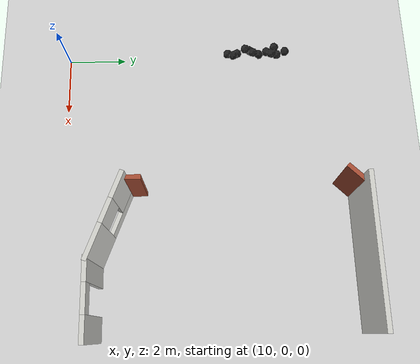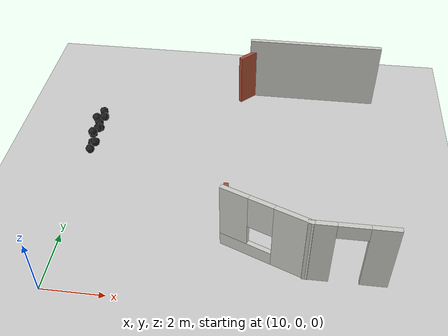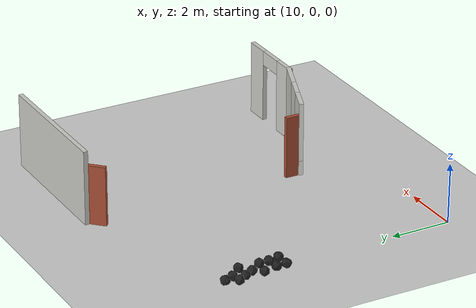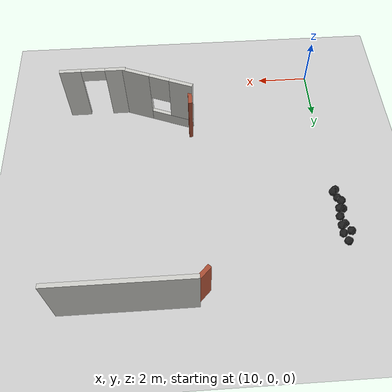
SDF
<sdf version="1.7">
 <world name="default">
  <model name="ground_plane">
   <static>1</static>
   <link name="link">
    <collision name="collision">
     <geometry><plane><normal>0 0 1</normal><size>100 100</size></plane></geometry>
     <surface><friction><ode><mu>100</mu><mu2>50</mu2></ode></friction></surface>
    </collision>
    <visual name="visual">
     <cast_shadows>0</cast_shadows>
     <geometry><plane><normal>0 0 1</normal><size>100 100</size></plane></geometry>
     <material>
      <script><uri>file://media/materials/scripts/gazebo.material</uri><name>Gazebo/Grey</name></script>
     </material>
    </visual>
   </link>
  </model>
  <model name="haoduomiantiaa_35">
   <link name="link_0">
    <inertial>
     <mass>0.2</mass>
     <inertia>
      <ixx>0.166667</ixx>
      <ixy>0</ixy>
      <ixz>0</ixz>
      <iyy>0.166667</iyy>
      <iyz>0</iyz>
      <izz>0.166667</izz>
     </inertia>
    </inertial>
    <visual name="visual">
     <geometry>
      <mesh>
       <uri>/home/lihaoyang/catkin_ws/src/pudong_gazebo/world/stl/haoduomianti.stl</uri>
       <scale>1 1 1</scale>
      </mesh>
     </geometry>
     <material>
      <lighting>1</lighting>
      <script><uri>file://media/materials/scripts/gazebo.material</uri><name>Gazebo/Black</name></script>
      <shader type="pixel"><normal_map>__default__</normal_map></shader>
      <ambient>0.3 0.3 0.3 1</ambient>
      <diffuse>0.7 0.7 0.7 1</diffuse>
      <specular>0.01 0.01 0.01 1</specular>
      <emissive>0 0 0 1</emissive>
     </material>
    </visual>
    <collision name="collision">
     <geometry>
      <mesh>
       <uri>/home/lihaoyang/catkin_ws/src/pudong_gazebo/world/stl/haoduomianti.stl</uri>
       <scale>1 1 1</scale>
      </mesh>
     </geometry>
     <surface>
      <friction>
       <ode><mu>1</mu><mu2>1</mu2><fdir1>0 0 0</fdir1><slip1>0</slip1><slip2>0</slip2></ode>
       <torsional>
        <coefficient>1</coefficient>
        <patch_radius>0</patch_radius>
        <surface_radius>0</surface_radius>
        <use_patch_radius>1</use_patch_radius>
        <ode><slip>0</slip></ode>
       </torsional>
      </friction>
      <bounce><restitution_coefficient>0</restitution_coefficient><threshold>1e+06</threshold></bounce>
      <contact>
       <collide_without_contact>0</collide_without_contact>
       <collide_without_contact_bitmask>1</collide_without_contact_bitmask>
       <collide_bitmask>1</collide_bitmask>
       <ode>
        <soft_cfm>0</soft_cfm>
        <soft_erp>0.2</soft_erp>
        <kp>1e+13</kp>
        <kd>1</kd>
        <max_vel>0.01</max_vel>
        <min_depth>0</min_depth>
       </ode>
       <bullet>
        <split_impulse>1</split_impulse>
        <split_impulse_penetration_threshold>-0.01</split_impulse_penetration_threshold>
        <soft_cfm>0</soft_cfm>
        <soft_erp>0.2</soft_erp>
        <kp>1e+13</kp>
        <kd>1</kd>
       </bullet>
      </contact>
     </surface>
    </collision>
   </link>
   <static>0</static>
   <pose>10.0189 6.8516 -0.058058 0.728772 -1.14965 -0.725149</pose>
  </model>
  <model name="haoduomiantiaa_39">
   <link name="link_0">
    <inertial>
     <mass>0.2</mass>
     <inertia>
      <ixx>0.166667</ixx>
      <ixy>0</ixy>
      <ixz>0</ixz>
      <iyy>0.166667</iyy>
      <iyz>0</iyz>
      <izz>0.166667</izz>
     </inertia>
    </inertial>
    <visual name="visual">
     <geometry>
      <mesh>
       <uri>/home/lihaoyang/catkin_ws/src/pudong_gazebo/world/stl/haoduomianti.stl</uri>
       <scale>1 1 1</scale>
      </mesh>
     </geometry>
     <material>
      <lighting>1</lighting>
      <script><uri>file://media/materials/scripts/gazebo.material</uri><name>Gazebo/Black</name></script>
      <shader type="pixel"><normal_map>__default__</normal_map></shader>
      <ambient>0.3 0.3 0.3 1</ambient>
      <diffuse>0.7 0.7 0.7 1</diffuse>
      <specular>0.01 0.01 0.01 1</specular>
      <emissive>0 0 0 1</emissive>
     </material>
    </visual>
    <collision name="collision">
     <geometry>
      <mesh>
       <uri>/home/lihaoyang/catkin_ws/src/pudong_gazebo/world/stl/haoduomianti.stl</uri>
       <scale>1 1 1</scale>
      </mesh>
     </geometry>
     <surface>
      <friction>
       <ode><mu>1</mu><mu2>1</mu2><fdir1>0 0 0</fdir1><slip1>0</slip1><slip2>0</slip2></ode>
       <torsional>
        <coefficient>1</coefficient>
        <patch_radius>0</patch_radius>
        <surface_radius>0</surface_radius>
        <use_patch_radius>1</use_patch_radius>
        <ode><slip>0</slip></ode>
       </torsional>
      </friction>
      <bounce><restitution_coefficient>0</restitution_coefficient><threshold>1e+06</threshold></bounce>
      <contact>
       <collide_without_contact>0</collide_without_contact>
       <collide_without_contact_bitmask>1</collide_without_contact_bitmask>
       <collide_bitmask>1</collide_bitmask>
       <ode>
        <soft_cfm>0</soft_cfm>
        <soft_erp>0.2</soft_erp>
        <kp>1e+13</kp>
        <kd>1</kd>
        <max_vel>0.01</max_vel>
        <min_depth>0</min_depth>
       </ode>
       <bullet>
        <split_impulse>1</split_impulse>
        <split_impulse_penetration_threshold>-0.01</split_impulse_penetration_threshold>
        <soft_cfm>0</soft_cfm>
        <soft_erp>0.2</soft_erp>
        <kp>1e+13</kp>
        <kd>1</kd>
       </bullet>
      </contact>
     </surface>
    </collision>
   </link>
   <static>0</static>
   <pose>9.86429 6.149 -0.115461 0.785642 -0.615594 0.414032</pose>
  </model>
  <model name="haoduomiantiaa_41">
   <link name="link_0">
    <inertial>
     <mass>0.2</mass>
     <inertia>
      <ixx>0.166667</ixx>
      <ixy>0</ixy>
      <ixz>0</ixz>
      <iyy>0.166667</iyy>
      <iyz>0</iyz>
      <izz>0.166667</izz>
     </inertia>
    </inertial>
    <visual name="visual">
     <geometry>
      <mesh>
       <uri>/home/lihaoyang/catkin_ws/src/pudong_gazebo/world/stl/haoduomianti.stl</uri>
       <scale>1 1 1</scale>
      </mesh>
     </geometry>
     <material>
      <lighting>1</lighting>
      <script><uri>file://media/materials/scripts/gazebo.material</uri><name>Gazebo/Black</name></script>
      <shader type="pixel"><normal_map>__default__</normal_map></shader>
      <ambient>0.3 0.3 0.3 1</ambient>
      <diffuse>0.7 0.7 0.7 1</diffuse>
      <specular>0.01 0.01 0.01 1</specular>
      <emissive>0 0 0 1</emissive>
     </material>
    </visual>
    <collision name="collision">
     <geometry>
      <mesh>
       <uri>/home/lihaoyang/catkin_ws/src/pudong_gazebo/world/stl/haoduomianti.stl</uri>
       <scale>1 1 1</scale>
      </mesh>
     </geometry>
     <surface>
      <friction>
       <ode><mu>1</mu><mu2>1</mu2><fdir1>0 0 0</fdir1><slip1>0</slip1><slip2>0</slip2></ode>
       <torsional>
        <coefficient>1</coefficient>
        <patch_radius>0</patch_radius>
        <surface_radius>0</surface_radius>
        <use_patch_radius>1</use_patch_radius>
        <ode><slip>0</slip></ode>
       </torsional>
      </friction>
      <bounce><restitution_coefficient>0</restitution_coefficient><threshold>1e+06</threshold></bounce>
      <contact>
       <collide_without_contact>0</collide_without_contact>
       <collide_without_contact_bitmask>1</collide_without_contact_bitmask>
       <collide_bitmask>1</collide_bitmask>
       <ode>
        <soft_cfm>0</soft_cfm>
        <soft_erp>0.2</soft_erp>
        <kp>1e+13</kp>
        <kd>1</kd>
        <max_vel>0.01</max_vel>
        <min_depth>0</min_depth>
       </ode>
       <bullet>
        <split_impulse>1</split_impulse>
        <split_impulse_penetration_threshold>-0.01</split_impulse_penetration_threshold>
        <soft_cfm>0</soft_cfm>
        <soft_erp>0.2</soft_erp>
        <kp>1e+13</kp>
        <kd>1</kd>
       </bullet>
      </contact>
     </surface>
    </collision>
   </link>
   <static>0</static>
   <pose>9.93964 7.59733 -0.11331 0.785382 -0.565827 1.96166</pose>
  </model>
  <model name="haoduomiantiaa_45">
   <link name="link_0">
    <inertial>
     <mass>0.2</mass>
     <inertia>
      <ixx>0.166667</ixx>
      <ixy>0</ixy>
      <ixz>0</ixz>
      <iyy>0.166667</iyy>
      <iyz>0</iyz>
      <izz>0.166667</izz>
     </inertia>
    </inertial>
    <visual name="visual">
     <geometry>
      <mesh>
       <uri>/home/lihaoyang/catkin_ws/src/pudong_gazebo/world/stl/haoduomianti.stl</uri>
       <scale>1 1 1</scale>
      </mesh>
     </geometry>
     <material>
      <lighting>1</lighting>
      <script><uri>file://media/materials/scripts/gazebo.material</uri><name>Gazebo/Black</name></script>
      <shader type="pixel"><normal_map>__default__</normal_map></shader>
      <ambient>0.3 0.3 0.3 1</ambient>
      <diffuse>0.7 0.7 0.7 1</diffuse>
      <specular>0.01 0.01 0.01 1</specular>
      <emissive>0 0 0 1</emissive>
     </material>
    </visual>
    <collision name="collision">
     <geometry>
      <mesh>
       <uri>/home/lihaoyang/catkin_ws/src/pudong_gazebo/world/stl/haoduomianti.stl</uri>
       <scale>1 1 1</scale>
      </mesh>
     </geometry>
     <surface>
      <friction>
       <ode><mu>1</mu><mu2>1</mu2><fdir1>0 0 0</fdir1><slip1>0</slip1><slip2>0</slip2></ode>
       <torsional>
        <coefficient>1</coefficient>
        <patch_radius>0</patch_radius>
        <surface_radius>0</surface_radius>
        <use_patch_radius>1</use_patch_radius>
        <ode><slip>0</slip></ode>
       </torsional>
      </friction>
      <bounce><restitution_coefficient>0</restitution_coefficient><threshold>1e+06</threshold></bounce>
      <contact>
       <collide_without_contact>0</collide_without_contact>
       <collide_without_contact_bitmask>1</collide_without_contact_bitmask>
       <collide_bitmask>1</collide_bitmask>
       <ode>
        <soft_cfm>0</soft_cfm>
        <soft_erp>0.2</soft_erp>
        <kp>1e+13</kp>
        <kd>1</kd>
        <max_vel>0.01</max_vel>
        <min_depth>0</min_depth>
       </ode>
       <bullet>
        <split_impulse>1</split_impulse>
        <split_impulse_penetration_threshold>-0.01</split_impulse_penetration_threshold>
        <soft_cfm>0</soft_cfm>
        <soft_erp>0.2</soft_erp>
        <kp>1e+13</kp>
        <kd>1</kd>
       </bullet>
      </contact>
     </surface>
    </collision>
   </link>
   <static>0</static>
   <pose>9.88957 5.83277 -0.110086 0.655447 -0.670297 2.05622</pose>
  </model>
  <model name="haoduomiantiaa_49">
   <link name="link_0">
    <inertial>
     <mass>0.2</mass>
     <inertia>
      <ixx>0.166667</ixx>
      <ixy>0</ixy>
      <ixz>0</ixz>
      <iyy>0.166667</iyy>
      <iyz>0</iyz>
      <izz>0.166667</izz>
     </inertia>
    </inertial>
    <visual name="visual">
     <geometry>
      <mesh>
       <uri>/home/lihaoyang/catkin_ws/src/pudong_gazebo/world/stl/haoduomianti.stl</uri>
       <scale>1 1 1</scale>
      </mesh>
     </geometry>
     <material>
      <lighting>1</lighting>
      <script><uri>file://media/materials/scripts/gazebo.material</uri><name>Gazebo/Black</name></script>
      <shader type="pixel"><normal_map>__default__</normal_map></shader>
      <ambient>0.3 0.3 0.3 1</ambient>
      <diffuse>0.7 0.7 0.7 1</diffuse>
      <specular>0.01 0.01 0.01 1</specular>
      <emissive>0 0 0 1</emissive>
     </material>
    </visual>
    <collision name="collision">
     <geometry>
      <mesh>
       <uri>/home/lihaoyang/catkin_ws/src/pudong_gazebo/world/stl/haoduomianti.stl</uri>
       <scale>1 1 1</scale>
      </mesh>
     </geometry>
     <surface>
      <friction>
       <ode><mu>1</mu><mu2>1</mu2><fdir1>0 0 0</fdir1><slip1>0</slip1><slip2>0</slip2></ode>
       <torsional>
        <coefficient>1</coefficient>
        <patch_radius>0</patch_radius>
        <surface_radius>0</surface_radius>
        <use_patch_radius>1</use_patch_radius>
        <ode><slip>0</slip></ode>
       </torsional>
      </friction>
      <bounce><restitution_coefficient>0</restitution_coefficient><threshold>1e+06</threshold></bounce>
      <contact>
       <collide_without_contact>0</collide_without_contact>
       <collide_without_contact_bitmask>1</collide_without_contact_bitmask>
       <collide_bitmask>1</collide_bitmask>
       <ode>
        <soft_cfm>0</soft_cfm>
        <soft_erp>0.2</soft_erp>
        <kp>1e+13</kp>
        <kd>1</kd>
        <max_vel>0.01</max_vel>
        <min_depth>0</min_depth>
       </ode>
       <bullet>
        <split_impulse>1</split_impulse>
        <split_impulse_penetration_threshold>-0.01</split_impulse_penetration_threshold>
        <soft_cfm>0</soft_cfm>
        <soft_erp>0.2</soft_erp>
        <kp>1e+13</kp>
        <kd>1</kd>
       </bullet>
      </contact>
     </surface>
    </collision>
   </link>
   <static>0</static>
   <pose>9.75485 6.62237 -0.116007 0.785505 -0.615481 -0.572969</pose>
  </model>
  <model name="haoduomiantiaa_53">
   <link name="link_0">
    <inertial>
     <mass>0.2</mass>
     <inertia>
      <ixx>0.166667</ixx>
      <ixy>0</ixy>
      <ixz>0</ixz>
      <iyy>0.166667</iyy>
      <iyz>0</iyz>
      <izz>0.166667</izz>
     </inertia>
    </inertial>
    <visual name="visual">
     <geometry>
      <mesh>
       <uri>/home/lihaoyang/catkin_ws/src/pudong_gazebo/world/stl/haoduomianti.stl</uri>
       <scale>1 1 1</scale>
      </mesh>
     </geometry>
     <material>
      <lighting>1</lighting>
      <script><uri>file://media/materials/scripts/gazebo.material</uri><name>Gazebo/Black</name></script>
      <shader type="pixel"><normal_map>__default__</normal_map></shader>
      <ambient>0.3 0.3 0.3 1</ambient>
      <diffuse>0.7 0.7 0.7 1</diffuse>
      <specular>0.01 0.01 0.01 1</specular>
      <emissive>0 0 0 1</emissive>
     </material>
    </visual>
    <collision name="collision">
     <geometry>
      <mesh>
       <uri>/home/lihaoyang/catkin_ws/src/pudong_gazebo/world/stl/haoduomianti.stl</uri>
       <scale>1 1 1</scale>
      </mesh>
     </geometry>
     <surface>
      <friction>
       <ode><mu>1</mu><mu2>1</mu2><fdir1>0 0 0</fdir1><slip1>0</slip1><slip2>0</slip2></ode>
       <torsional>
        <coefficient>1</coefficient>
        <patch_radius>0</patch_radius>
        <surface_radius>0</surface_radius>
        <use_patch_radius>1</use_patch_radius>
        <ode><slip>0</slip></ode>
       </torsional>
      </friction>
      <bounce><restitution_coefficient>0</restitution_coefficient><threshold>1e+06</threshold></bounce>
      <contact>
       <collide_without_contact>0</collide_without_contact>
       <collide_without_contact_bitmask>1</collide_without_contact_bitmask>
       <collide_bitmask>1</collide_bitmask>
       <ode>
        <soft_cfm>0</soft_cfm>
        <soft_erp>0.2</soft_erp>
        <kp>1e+13</kp>
        <kd>1</kd>
        <max_vel>0.01</max_vel>
        <min_depth>0</min_depth>
       </ode>
       <bullet>
        <split_impulse>1</split_impulse>
        <split_impulse_penetration_threshold>-0.01</split_impulse_penetration_threshold>
        <soft_cfm>0</soft_cfm>
        <soft_erp>0.2</soft_erp>
        <kp>1e+13</kp>
        <kd>1</kd>
       </bullet>
      </contact>
     </surface>
    </collision>
   </link>
   <static>0</static>
   <pose>9.85192 7.22022 -0.107887 0.613081 -0.68561 0.763062</pose>
  </model>
  <model name="haoduomiantiaa_57">
   <link name="link_0">
    <inertial>
     <mass>0.2</mass>
     <inertia>
      <ixx>0.166667</ixx>
      <ixy>0</ixy>
      <ixz>0</ixz>
      <iyy>0.166667</iyy>
      <iyz>0</iyz>
      <izz>0.166667</izz>
     </inertia>
    </inertial>
    <visual name="visual">
     <geometry>
      <mesh>
       <uri>/home/lihaoyang/catkin_ws/src/pudong_gazebo/world/stl/haoduomianti.stl</uri>
       <scale>1 1 1</scale>
      </mesh>
     </geometry>
     <material>
      <lighting>1</lighting>
      <script><uri>file://media/materials/scripts/gazebo.material</uri><name>Gazebo/Black</name></script>
      <shader type="pixel"><normal_map>__default__</normal_map></shader>
      <ambient>0.3 0.3 0.3 1</ambient>
      <diffuse>0.7 0.7 0.7 1</diffuse>
      <specular>0.01 0.01 0.01 1</specular>
      <emissive>0 0 0 1</emissive>
     </material>
    </visual>
    <collision name="collision">
     <geometry>
      <mesh>
       <uri>/home/lihaoyang/catkin_ws/src/pudong_gazebo/world/stl/haoduomianti.stl</uri>
       <scale>1 1 1</scale>
      </mesh>
     </geometry>
     <surface>
      <friction>
       <ode><mu>1</mu><mu2>1</mu2><fdir1>0 0 0</fdir1><slip1>0</slip1><slip2>0</slip2></ode>
       <torsional>
        <coefficient>1</coefficient>
        <patch_radius>0</patch_radius>
        <surface_radius>0</surface_radius>
        <use_patch_radius>1</use_patch_radius>
        <ode><slip>0</slip></ode>
       </torsional>
      </friction>
      <bounce><restitution_coefficient>0</restitution_coefficient><threshold>1e+06</threshold></bounce>
      <contact>
       <collide_without_contact>0</collide_without_contact>
       <collide_without_contact_bitmask>1</collide_without_contact_bitmask>
       <collide_bitmask>1</collide_bitmask>
       <ode>
        <soft_cfm>0</soft_cfm>
        <soft_erp>0.2</soft_erp>
        <kp>1e+13</kp>
        <kd>1</kd>
        <max_vel>0.01</max_vel>
        <min_depth>0</min_depth>
       </ode>
       <bullet>
        <split_impulse>1</split_impulse>
        <split_impulse_penetration_threshold>-0.01</split_impulse_penetration_threshold>
        <soft_cfm>0</soft_cfm>
        <soft_erp>0.2</soft_erp>
        <kp>1e+13</kp>
        <kd>1</kd>
       </bullet>
      </contact>
     </surface>
    </collision>
   </link>
   <static>0</static>
   <pose>9.90773 6.4278 0.162195 1.04364 -0.419477 -2.47544</pose>
  </model>
  <model name="haoduomiantiaa_65">
   <link name="link_0">
    <inertial>
     <mass>0.2</mass>
     <inertia>
      <ixx>0.166667</ixx>
      <ixy>0</ixy>
      <ixz>0</ixz>
      <iyy>0.166667</iyy>
      <iyz>0</iyz>
      <izz>0.166667</izz>
     </inertia>
    </inertial>
    <visual name="visual">
     <geometry>
      <mesh>
       <uri>/home/lihaoyang/catkin_ws/src/pudong_gazebo/world/stl/haoduomianti.stl</uri>
       <scale>1 1 1</scale>
      </mesh>
     </geometry>
     <material>
      <lighting>1</lighting>
      <script><uri>file://media/materials/scripts/gazebo.material</uri><name>Gazebo/Black</name></script>
      <shader type="pixel"><normal_map>__default__</normal_map></shader>
      <ambient>0.3 0.3 0.3 1</ambient>
      <diffuse>0.7 0.7 0.7 1</diffuse>
      <specular>0.01 0.01 0.01 1</specular>
      <emissive>0 0 0 1</emissive>
     </material>
    </visual>
    <collision name="collision">
     <geometry>
      <mesh>
       <uri>/home/lihaoyang/catkin_ws/src/pudong_gazebo/world/stl/haoduomianti.stl</uri>
       <scale>1 1 1</scale>
      </mesh>
     </geometry>
     <surface>
      <friction>
       <ode><mu>1</mu><mu2>1</mu2><fdir1>0 0 0</fdir1><slip1>0</slip1><slip2>0</slip2></ode>
       <torsional>
        <coefficient>1</coefficient>
        <patch_radius>0</patch_radius>
        <surface_radius>0</surface_radius>
        <use_patch_radius>1</use_patch_radius>
        <ode><slip>0</slip></ode>
       </torsional>
      </friction>
      <bounce><restitution_coefficient>0</restitution_coefficient><threshold>1e+06</threshold></bounce>
      <contact>
       <collide_without_contact>0</collide_without_contact>
       <collide_without_contact_bitmask>1</collide_without_contact_bitmask>
       <collide_bitmask>1</collide_bitmask>
       <ode>
        <soft_cfm>0</soft_cfm>
        <soft_erp>0.2</soft_erp>
        <kp>1e+13</kp>
        <kd>1</kd>
        <max_vel>0.01</max_vel>
        <min_depth>0</min_depth>
       </ode>
       <bullet>
        <split_impulse>1</split_impulse>
        <split_impulse_penetration_threshold>-0.01</split_impulse_penetration_threshold>
        <soft_cfm>0</soft_cfm>
        <soft_erp>0.2</soft_erp>
        <kp>1e+13</kp>
        <kd>1</kd>
       </bullet>
      </contact>
     </surface>
    </collision>
   </link>
   <static>0</static>
   <pose>9.96659 7.36416 0.080085 0.660725 -0.557515 -0.220161</pose>
  </model>
  <model name="haoduomiantiaa_81">
   <link name="link_0">
    <inertial>
     <mass>0.2</mass>
     <inertia>
      <ixx>0.166667</ixx>
      <ixy>0</ixy>
      <ixz>0</ixz>
      <iyy>0.166667</iyy>
      <iyz>0</iyz>
      <izz>0.166667</izz>
     </inertia>
    </inertial>
    <visual name="visual">
     <geometry>
      <mesh>
       <uri>/home/lihaoyang/catkin_ws/src/pudong_gazebo/world/stl/haoduomianti.stl</uri>
       <scale>1 1 1</scale>
      </mesh>
     </geometry>
     <material>
      <lighting>1</lighting>
      <script><uri>file://media/materials/scripts/gazebo.material</uri><name>Gazebo/Black</name></script>
      <shader type="pixel"><normal_map>__default__</normal_map></shader>
      <ambient>0.3 0.3 0.3 1</ambient>
      <diffuse>0.7 0.7 0.7 1</diffuse>
      <specular>0.01 0.01 0.01 1</specular>
      <emissive>0 0 0 1</emissive>
     </material>
    </visual>
    <collision name="collision">
     <geometry>
      <mesh>
       <uri>/home/lihaoyang/catkin_ws/src/pudong_gazebo/world/stl/haoduomianti.stl</uri>
       <scale>1 1 1</scale>
      </mesh>
     </geometry>
     <surface>
      <friction>
       <ode><mu>1</mu><mu2>1</mu2><fdir1>0 0 0</fdir1><slip1>0</slip1><slip2>0</slip2></ode>
       <torsional>
        <coefficient>1</coefficient>
        <patch_radius>0</patch_radius>
        <surface_radius>0</surface_radius>
        <use_patch_radius>1</use_patch_radius>
        <ode><slip>0</slip></ode>
       </torsional>
      </friction>
      <bounce><restitution_coefficient>0</restitution_coefficient><threshold>1e+06</threshold></bounce>
      <contact>
       <collide_without_contact>0</collide_without_contact>
       <collide_without_contact_bitmask>1</collide_without_contact_bitmask>
       <collide_bitmask>1</collide_bitmask>
       <ode>
        <soft_cfm>0</soft_cfm>
        <soft_erp>0.2</soft_erp>
        <kp>1e+13</kp>
        <kd>1</kd>
        <max_vel>0.01</max_vel>
        <min_depth>0</min_depth>
       </ode>
       <bullet>
        <split_impulse>1</split_impulse>
        <split_impulse_penetration_threshold>-0.01</split_impulse_penetration_threshold>
        <soft_cfm>0</soft_cfm>
        <soft_erp>0.2</soft_erp>
        <kp>1e+13</kp>
        <kd>1</kd>
       </bullet>
      </contact>
     </surface>
    </collision>
   </link>
   <static>0</static>
   <pose>9.90857 6.74034 0.091547 0.865792 -0.475133 -0.401096</pose>
  </model>
  <model name="haoduomiantiaa_102">
   <link name="link_0">
    <inertial>
     <mass>0.2</mass>
     <inertia>
      <ixx>0.166667</ixx>
      <ixy>0</ixy>
      <ixz>0</ixz>
      <iyy>0.166667</iyy>
      <iyz>0</iyz>
      <izz>0.166667</izz>
     </inertia>
    </inertial>
    <visual name="visual">
     <geometry>
      <mesh>
       <uri>/home/lihaoyang/catkin_ws/src/pudong_gazebo/world/stl/haoduomianti.stl</uri>
       <scale>1 1 1</scale>
      </mesh>
     </geometry>
     <material>
      <lighting>1</lighting>
      <script><uri>file://media/materials/scripts/gazebo.material</uri><name>Gazebo/Black</name></script>
      <shader type="pixel"><normal_map>__default__</normal_map></shader>
      <ambient>0.3 0.3 0.3 1</ambient>
      <diffuse>0.7 0.7 0.7 1</diffuse>
      <specular>0.01 0.01 0.01 1</specular>
      <emissive>0 0 0 1</emissive>
     </material>
    </visual>
    <collision name="collision">
     <geometry>
      <mesh>
       <uri>/home/lihaoyang/catkin_ws/src/pudong_gazebo/world/stl/haoduomianti.stl</uri>
       <scale>1 1 1</scale>
      </mesh>
     </geometry>
     <surface>
      <friction>
       <ode><mu>1</mu><mu2>1</mu2><fdir1>0 0 0</fdir1><slip1>0</slip1><slip2>0</slip2></ode>
       <torsional>
        <coefficient>1</coefficient>
        <patch_radius>0</patch_radius>
        <surface_radius>0</surface_radius>
        <use_patch_radius>1</use_patch_radius>
        <ode><slip>0</slip></ode>
       </torsional>
      </friction>
      <bounce><restitution_coefficient>0</restitution_coefficient><threshold>1e+06</threshold></bounce>
      <contact>
       <collide_without_contact>0</collide_without_contact>
       <collide_without_contact_bitmask>1</collide_without_contact_bitmask>
       <collide_bitmask>1</collide_bitmask>
       <ode>
        <soft_cfm>0</soft_cfm>
        <soft_erp>0.2</soft_erp>
        <kp>1e+13</kp>
        <kd>1</kd>
        <max_vel>0.01</max_vel>
        <min_depth>0</min_depth>
       </ode>
       <bullet>
        <split_impulse>1</split_impulse>
        <split_impulse_penetration_threshold>-0.01</split_impulse_penetration_threshold>
        <soft_cfm>0</soft_cfm>
        <soft_erp>0.2</soft_erp>
        <kp>1e+13</kp>
        <kd>1</kd>
       </bullet>
      </contact>
     </surface>
    </collision>
   </link>
   <static>0</static>
   <pose>9.63603 7.53433 -0.115477 0.785445 -0.615497 -0.650804</pose>
  </model>
  <model name="haoduomiantiaa_104">
   <link name="link_0">
    <inertial>
     <mass>0.2</mass>
     <inertia>
      <ixx>0.166667</ixx>
      <ixy>0</ixy>
      <ixz>0</ixz>
      <iyy>0.166667</iyy>
      <iyz>0</iyz>
      <izz>0.166667</izz>
     </inertia>
    </inertial>
    <visual name="visual">
     <geometry>
      <mesh>
       <uri>/home/lihaoyang/catkin_ws/src/pudong_gazebo/world/stl/haoduomianti.stl</uri>
       <scale>1 1 1</scale>
      </mesh>
     </geometry>
     <material>
      <lighting>1</lighting>
      <script><uri>file://media/materials/scripts/gazebo.material</uri><name>Gazebo/Black</name></script>
      <shader type="pixel"><normal_map>__default__</normal_map></shader>
      <ambient>0.3 0.3 0.3 1</ambient>
      <diffuse>0.7 0.7 0.7 1</diffuse>
      <specular>0.01 0.01 0.01 1</specular>
      <emissive>0 0 0 1</emissive>
     </material>
    </visual>
    <collision name="collision">
     <geometry>
      <mesh>
       <uri>/home/lihaoyang/catkin_ws/src/pudong_gazebo/world/stl/haoduomianti.stl</uri>
       <scale>1 1 1</scale>
      </mesh>
     </geometry>
     <surface>
      <friction>
       <ode><mu>1</mu><mu2>1</mu2><fdir1>0 0 0</fdir1><slip1>0</slip1><slip2>0</slip2></ode>
       <torsional>
        <coefficient>1</coefficient>
        <patch_radius>0</patch_radius>
        <surface_radius>0</surface_radius>
        <use_patch_radius>1</use_patch_radius>
        <ode><slip>0</slip></ode>
       </torsional>
      </friction>
      <bounce><restitution_coefficient>0</restitution_coefficient><threshold>1e+06</threshold></bounce>
      <contact>
       <collide_without_contact>0</collide_without_contact>
       <collide_without_contact_bitmask>1</collide_without_contact_bitmask>
       <collide_bitmask>1</collide_bitmask>
       <ode>
        <soft_cfm>0</soft_cfm>
        <soft_erp>0.2</soft_erp>
        <kp>1e+13</kp>
        <kd>1</kd>
        <max_vel>0.01</max_vel>
        <min_depth>0</min_depth>
       </ode>
       <bullet>
        <split_impulse>1</split_impulse>
        <split_impulse_penetration_threshold>-0.01</split_impulse_penetration_threshold>
        <soft_cfm>0</soft_cfm>
        <soft_erp>0.2</soft_erp>
        <kp>1e+13</kp>
        <kd>1</kd>
       </bullet>
      </contact>
     </surface>
    </collision>
   </link>
   <static>0</static>
   <pose>10.0135 5.97823 0.073026 0.909858 -0.611179 2.29292</pose>
  </model>
  <model name="haoduomiantiaa_120">
   <link name="link_0">
    <inertial>
     <mass>0.2</mass>
     <inertia>
      <ixx>0.166667</ixx>
      <ixy>0</ixy>
      <ixz>0</ixz>
      <iyy>0.166667</iyy>
      <iyz>0</iyz>
      <izz>0.166667</izz>
     </inertia>
    </inertial>
    <visual name="visual">
     <geometry>
      <mesh>
       <uri>/home/lihaoyang/catkin_ws/src/pudong_gazebo/world/stl/haoduomianti.stl</uri>
       <scale>1 1 1</scale>
      </mesh>
     </geometry>
     <material>
      <lighting>1</lighting>
      <script><uri>file://media/materials/scripts/gazebo.material</uri><name>Gazebo/Black</name></script>
      <shader type="pixel"><normal_map>__default__</normal_map></shader>
      <ambient>0.3 0.3 0.3 1</ambient>
      <diffuse>0.7 0.7 0.7 1</diffuse>
      <specular>0.01 0.01 0.01 1</specular>
      <emissive>0 0 0 1</emissive>
     </material>
    </visual>
    <collision name="collision">
     <geometry>
      <mesh>
       <uri>/home/lihaoyang/catkin_ws/src/pudong_gazebo/world/stl/haoduomianti.stl</uri>
       <scale>1 1 1</scale>
      </mesh>
     </geometry>
     <surface>
      <friction>
       <ode><mu>1</mu><mu2>1</mu2><fdir1>0 0 0</fdir1><slip1>0</slip1><slip2>0</slip2></ode>
       <torsional>
        <coefficient>1</coefficient>
        <patch_radius>0</patch_radius>
        <surface_radius>0</surface_radius>
        <use_patch_radius>1</use_patch_radius>
        <ode><slip>0</slip></ode>
       </torsional>
      </friction>
      <bounce><restitution_coefficient>0</restitution_coefficient><threshold>1e+06</threshold></bounce>
      <contact>
       <collide_without_contact>0</collide_without_contact>
       <collide_without_contact_bitmask>1</collide_without_contact_bitmask>
       <collide_bitmask>1</collide_bitmask>
       <ode>
        <soft_cfm>0</soft_cfm>
        <soft_erp>0.2</soft_erp>
        <kp>1e+13</kp>
        <kd>1</kd>
        <max_vel>0.01</max_vel>
        <min_depth>0</min_depth>
       </ode>
       <bullet>
        <split_impulse>1</split_impulse>
        <split_impulse_penetration_threshold>-0.01</split_impulse_penetration_threshold>
        <soft_cfm>0</soft_cfm>
        <soft_erp>0.2</soft_erp>
        <kp>1e+13</kp>
        <kd>1</kd>
       </bullet>
      </contact>
     </surface>
    </collision>
   </link>
   <static>0</static>
   <pose>9.81563 7.91841 -0.115498 0.785239 -0.615554 0.945229</pose>
  </model>
  <model name="house">
   <link name="Wall_10">
    <pose>6.351 -3.13846 0 0 -0 2.76762</pose>
    <visual name="Wall_10_Visual_2">
     <pose>0.98795 0 1.5 0 -0 0</pose>
     <geometry><box><size>0.905886 0.15 2</size></box></geometry>
     <material>
      <script><uri>file://media/materials/scripts/gazebo.material</uri><name>Gazebo/CeilingTiled</name></script>
      <ambient>1 1 1 1</ambient>
      <shader type="pixel"/>
     </material>
     <meta><layer>0</layer></meta>
    </visual>
    <visual name="Wall_10_Visual_3">
     <pose>0.135006 0 1.9 0 -0 0</pose>
     <geometry><box><size>0.8 0.15 1.2</size></box></geometry>
     <material>
      <script><uri>file://media/materials/scripts/gazebo.material</uri><name>Gazebo/CeilingTiled</name></script>
      <ambient>1 1 1 1</ambient>
      <shader type="pixel"/>
     </material>
     <meta><layer>0</layer></meta>
    </visual>
    <visual name="Wall_10_Visual_1">
     <pose>0.58795 0 0.25 0 -0 0</pose>
     <geometry><box><size>1.70589 0.15 0.5</size></box></geometry>
     <material>
      <script><uri>file://media/materials/scripts/gazebo.material</uri><name>Gazebo/CeilingTiled</name></script>
      <ambient>1 1 1 1</ambient>
      <shader type="pixel"/>
     </material>
     <meta><layer>0</layer></meta>
    </visual>
    <visual name="Wall_10_Visual_0">
     <pose>-0.852943 0 1.25 0 -0 0</pose>
     <geometry><box><size>1.1759 0.15 2.5</size></box></geometry>
     <material>
      <script><uri>file://media/materials/scripts/gazebo.material</uri><name>Gazebo/CeilingTiled</name></script>
      <ambient>1 1 1 1</ambient>
      <shader type="pixel"/>
     </material>
     <meta><layer>0</layer></meta>
    </visual>
    <collision name="Wall_10_Collision_0">
     <pose>-0.852943 0 1.25 0 -0 0</pose>
     <geometry><box><size>1.1759 0.15 2.5</size></box></geometry>
     <surface>
      <friction>
       <ode><mu>1</mu><mu2>1</mu2><fdir1>0 0 0</fdir1><slip1>0</slip1><slip2>0</slip2></ode>
       <torsional>
        <coefficient>1</coefficient>
        <patch_radius>0</patch_radius>
        <surface_radius>0</surface_radius>
        <use_patch_radius>1</use_patch_radius>
        <ode><slip>0</slip></ode>
       </torsional>
      </friction>
      <bounce><restitution_coefficient>0</restitution_coefficient><threshold>1e+06</threshold></bounce>
      <contact>
       <collide_without_contact>0</collide_without_contact>
       <collide_without_contact_bitmask>1</collide_without_contact_bitmask>
       <collide_bitmask>1</collide_bitmask>
       <ode>
        <soft_cfm>0</soft_cfm>
        <soft_erp>0.2</soft_erp>
        <kp>1e+13</kp>
        <kd>1</kd>
        <max_vel>0.01</max_vel>
        <min_depth>0</min_depth>
       </ode>
       <bullet>
        <split_impulse>1</split_impulse>
        <split_impulse_penetration_threshold>-0.01</split_impulse_penetration_threshold>
        <soft_cfm>0</soft_cfm>
        <soft_erp>0.2</soft_erp>
        <kp>1e+13</kp>
        <kd>1</kd>
       </bullet>
      </contact>
     </surface>
    </collision>
    <collision name="Wall_10_Collision_1">
     <pose>0.58795 0 0.25 0 -0 0</pose>
     <geometry><box><size>1.70589 0.15 0.5</size></box></geometry>
     <surface>
      <friction>
       <ode><mu>1</mu><mu2>1</mu2><fdir1>0 0 0</fdir1><slip1>0</slip1><slip2>0</slip2></ode>
       <torsional>
        <coefficient>1</coefficient>
        <patch_radius>0</patch_radius>
        <surface_radius>0</surface_radius>
        <use_patch_radius>1</use_patch_radius>
        <ode><slip>0</slip></ode>
       </torsional>
      </friction>
      <bounce><restitution_coefficient>0</restitution_coefficient><threshold>1e+06</threshold></bounce>
      <contact>
       <collide_without_contact>0</collide_without_contact>
       <collide_without_contact_bitmask>1</collide_without_contact_bitmask>
       <collide_bitmask>1</collide_bitmask>
       <ode>
        <soft_cfm>0</soft_cfm>
        <soft_erp>0.2</soft_erp>
        <kp>1e+13</kp>
        <kd>1</kd>
        <max_vel>0.01</max_vel>
        <min_depth>0</min_depth>
       </ode>
       <bullet>
        <split_impulse>1</split_impulse>
        <split_impulse_penetration_threshold>-0.01</split_impulse_penetration_threshold>
        <soft_cfm>0</soft_cfm>
        <soft_erp>0.2</soft_erp>
        <kp>1e+13</kp>
        <kd>1</kd>
       </bullet>
      </contact>
     </surface>
    </collision>
    <collision name="Wall_10_Collision_2">
     <pose>0.98795 0 1.5 0 -0 0</pose>
     <geometry><box><size>0.905886 0.15 2</size></box></geometry>
     <surface>
      <friction>
       <ode><mu>1</mu><mu2>1</mu2><fdir1>0 0 0</fdir1><slip1>0</slip1><slip2>0</slip2></ode>
       <torsional>
        <coefficient>1</coefficient>
        <patch_radius>0</patch_radius>
        <surface_radius>0</surface_radius>
        <use_patch_radius>1</use_patch_radius>
        <ode><slip>0</slip></ode>
       </torsional>
      </friction>
      <bounce><restitution_coefficient>0</restitution_coefficient><threshold>1e+06</threshold></bounce>
      <contact>
       <collide_without_contact>0</collide_without_contact>
       <collide_without_contact_bitmask>1</collide_without_contact_bitmask>
       <collide_bitmask>1</collide_bitmask>
       <ode>
        <soft_cfm>0</soft_cfm>
        <soft_erp>0.2</soft_erp>
        <kp>1e+13</kp>
        <kd>1</kd>
        <max_vel>0.01</max_vel>
        <min_depth>0</min_depth>
       </ode>
       <bullet>
        <split_impulse>1</split_impulse>
        <split_impulse_penetration_threshold>-0.01</split_impulse_penetration_threshold>
        <soft_cfm>0</soft_cfm>
        <soft_erp>0.2</soft_erp>
        <kp>1e+13</kp>
        <kd>1</kd>
       </bullet>
      </contact>
     </surface>
    </collision>
    <collision name="Wall_10_Collision_3">
     <pose>0.135006 0 1.9 0 -0 0</pose>
     <geometry><box><size>0.8 0.15 1.2</size></box></geometry>
     <surface>
      <friction>
       <ode><mu>1</mu><mu2>1</mu2><fdir1>0 0 0</fdir1><slip1>0</slip1><slip2>0</slip2></ode>
       <torsional>
        <coefficient>1</coefficient>
        <patch_radius>0</patch_radius>
        <surface_radius>0</surface_radius>
        <use_patch_radius>1</use_patch_radius>
        <ode><slip>0</slip></ode>
       </torsional>
      </friction>
      <bounce><restitution_coefficient>0</restitution_coefficient><threshold>1e+06</threshold></bounce>
      <contact>
       <collide_without_contact>0</collide_without_contact>
       <collide_without_contact_bitmask>1</collide_without_contact_bitmask>
       <collide_bitmask>1</collide_bitmask>
       <ode>
        <soft_cfm>0</soft_cfm>
        <soft_erp>0.2</soft_erp>
        <kp>1e+13</kp>
        <kd>1</kd>
        <max_vel>0.01</max_vel>
        <min_depth>0</min_depth>
       </ode>
       <bullet>
        <split_impulse>1</split_impulse>
        <split_impulse_penetration_threshold>-0.01</split_impulse_penetration_threshold>
        <soft_cfm>0</soft_cfm>
        <soft_erp>0.2</soft_erp>
        <kp>1e+13</kp>
        <kd>1</kd>
       </bullet>
      </contact>
     </surface>
    </collision>
   </link>
   <link name="Wall_11">
    <pose>5.1147 -2.35573 0 0 -0 1.5708</pose>
    <inertial>
     <inertia><ixx>0</ixx><ixy>0</ixy><ixz>0</ixz><iyy>0</iyy><iyz>0</iyz><izz>0</izz></inertia>
     <mass>0</mass>
    </inertial>
    <visual name="Wall_11_Visual">
     <pose>0 0 1.05 0 -0 0</pose>
     <geometry><box><size>0.506266 0.15 2.1</size></box></geometry>
     <material>
      <script><uri>file://media/materials/scripts/gazebo.material</uri><name>Gazebo/Bricks</name></script>
      <ambient>1 1 1 1</ambient>
      <shader type="pixel"/>
     </material>
     <meta><layer>0</layer></meta>
    </visual>
    <collision name="Wall_11_Collision">
     <pose>0 0 1.05 0 -0 0</pose>
     <geometry><box><size>0.506266 0.15 2.1</size></box></geometry>
     <surface>
      <friction>
       <ode><mu>1</mu><mu2>1</mu2><fdir1>0 0 0</fdir1><slip1>0</slip1><slip2>0</slip2></ode>
       <torsional>
        <coefficient>1</coefficient>
        <patch_radius>0</patch_radius>
        <surface_radius>0</surface_radius>
        <use_patch_radius>1</use_patch_radius>
        <ode><slip>0</slip></ode>
       </torsional>
      </friction>
      <bounce><restitution_coefficient>0</restitution_coefficient><threshold>1e+06</threshold></bounce>
      <contact>
       <collide_without_contact>0</collide_without_contact>
       <collide_without_contact_bitmask>1</collide_without_contact_bitmask>
       <collide_bitmask>1</collide_bitmask>
       <ode>
        <soft_cfm>0</soft_cfm>
        <soft_erp>0.2</soft_erp>
        <kp>1e+13</kp>
        <kd>1</kd>
        <max_vel>0.01</max_vel>
        <min_depth>0</min_depth>
       </ode>
       <bullet>
        <split_impulse>1</split_impulse>
        <split_impulse_penetration_threshold>-0.01</split_impulse_penetration_threshold>
        <soft_cfm>0</soft_cfm>
        <soft_erp>0.2</soft_erp>
        <kp>1e+13</kp>
        <kd>1</kd>
       </bullet>
      </contact>
     </surface>
    </collision>
   </link>
   <link name="Wall_15">
    <pose>5.117 4.61078 0 0 -0 0.786576</pose>
    <visual name="Wall_15_Visual">
     <pose>0 0 1 0 -0 0</pose>
     <geometry><box><size>0.75 0.15 2</size></box></geometry>
     <material>
      <script><uri>file://media/materials/scripts/gazebo.material</uri><name>Gazebo/Bricks</name></script>
      <ambient>1 1 1 1</ambient>
      <shader type="pixel"/>
     </material>
     <meta><layer>0</layer></meta>
    </visual>
    <collision name="Wall_15_Collision">
     <pose>0 0 1 0 -0 0</pose>
     <geometry><box><size>0.75 0.15 2</size></box></geometry>
     <surface>
      <friction>
       <ode><mu>1</mu><mu2>1</mu2><fdir1>0 0 0</fdir1><slip1>0</slip1><slip2>0</slip2></ode>
       <torsional>
        <coefficient>1</coefficient>
        <patch_radius>0</patch_radius>
        <surface_radius>0</surface_radius>
        <use_patch_radius>1</use_patch_radius>
        <ode><slip>0</slip></ode>
       </torsional>
      </friction>
      <bounce><restitution_coefficient>0</restitution_coefficient><threshold>1e+06</threshold></bounce>
      <contact>
       <collide_without_contact>0</collide_without_contact>
       <collide_without_contact_bitmask>1</collide_without_contact_bitmask>
       <collide_bitmask>1</collide_bitmask>
       <ode>
        <soft_cfm>0</soft_cfm>
        <soft_erp>0.2</soft_erp>
        <kp>1e+13</kp>
        <kd>1</kd>
        <max_vel>0.01</max_vel>
        <min_depth>0</min_depth>
       </ode>
       <bullet>
        <split_impulse>1</split_impulse>
        <split_impulse_penetration_threshold>-0.01</split_impulse_penetration_threshold>
        <soft_cfm>0</soft_cfm>
        <soft_erp>0.2</soft_erp>
        <kp>1e+13</kp>
        <kd>1</kd>
       </bullet>
      </contact>
     </surface>
    </collision>
   </link>
   <link name="Wall_17">
    <pose>7.55371 4.86332 0 0 0 -8.8e-05</pose>
    <visual name="Wall_17_Visual">
     <pose>0 0 1.25 0 -0 0</pose>
     <geometry><box><size>4.75 0.15 2.5</size></box></geometry>
     <material>
      <script><uri>file://media/materials/scripts/gazebo.material</uri><name>Gazebo/CeilingTiled</name></script>
      <ambient>1 1 1 1</ambient>
      <shader type="pixel"/>
     </material>
     <meta><layer>0</layer></meta>
    </visual>
    <collision name="Wall_17_Collision">
     <pose>0 0 1.25 0 -0 0</pose>
     <geometry><box><size>4.75 0.15 2.5</size></box></geometry>
     <surface>
      <friction>
       <ode><mu>1</mu><mu2>1</mu2><fdir1>0 0 0</fdir1><slip1>0</slip1><slip2>0</slip2></ode>
       <torsional>
        <coefficient>1</coefficient>
        <patch_radius>0</patch_radius>
        <surface_radius>0</surface_radius>
        <use_patch_radius>1</use_patch_radius>
        <ode><slip>0</slip></ode>
       </torsional>
      </friction>
      <bounce><restitution_coefficient>0</restitution_coefficient><threshold>1e+06</threshold></bounce>
      <contact>
       <collide_without_contact>0</collide_without_contact>
       <collide_without_contact_bitmask>1</collide_without_contact_bitmask>
       <collide_bitmask>1</collide_bitmask>
       <ode>
        <soft_cfm>0</soft_cfm>
        <soft_erp>0.2</soft_erp>
        <kp>1e+13</kp>
        <kd>1</kd>
        <max_vel>0.01</max_vel>
        <min_depth>0</min_depth>
       </ode>
       <bullet>
        <split_impulse>1</split_impulse>
        <split_impulse_penetration_threshold>-0.01</split_impulse_penetration_threshold>
        <soft_cfm>0</soft_cfm>
        <soft_erp>0.2</soft_erp>
        <kp>1e+13</kp>
        <kd>1</kd>
       </bullet>
      </contact>
     </surface>
    </collision>
   </link>
   <link name="Wall_7">
    <pose>8.75749 -3.63745 0 0 -0 0</pose>
    <visual name="Wall_7_Visual_1">
     <pose>0.842517 0 1.25 0 -0 0</pose>
     <geometry><box><size>0.814967 0.15 2.5</size></box></geometry>
     <material>
      <script><uri>file://media/materials/scripts/gazebo.material</uri><name>Gazebo/CeilingTiled</name></script>
      <ambient>1 1 1 1</ambient>
      <shader type="pixel"/>
     </material>
     <meta><layer>0</layer></meta>
    </visual>
    <visual name="Wall_7_Visual_0">
     <pose>-0.857483 0 1.25 0 -0 0</pose>
     <geometry><box><size>0.785033 0.15 2.5</size></box></geometry>
     <material>
      <script><uri>file://media/materials/scripts/gazebo.material</uri><name>Gazebo/CeilingTiled</name></script>
      <ambient>1 1 1 1</ambient>
      <shader type="pixel"/>
     </material>
     <meta><layer>0</layer></meta>
    </visual>
    <visual name="Wall_7_Visual_2">
     <pose>-0.014967 0 2.25 0 -0 0</pose>
     <geometry><box><size>0.9 0.15 0.5</size></box></geometry>
     <material>
      <script><uri>file://media/materials/scripts/gazebo.material</uri><name>Gazebo/CeilingTiled</name></script>
      <ambient>1 1 1 1</ambient>
      <shader type="pixel"/>
     </material>
     <meta><layer>0</layer></meta>
    </visual>
    <collision name="Wall_7_Collision_0">
     <pose>-0.857483 0 1.25 0 -0 0</pose>
     <geometry><box><size>0.785033 0.15 2.5</size></box></geometry>
     <surface>
      <friction>
       <ode><mu>1</mu><mu2>1</mu2><fdir1>0 0 0</fdir1><slip1>0</slip1><slip2>0</slip2></ode>
       <torsional>
        <coefficient>1</coefficient>
        <patch_radius>0</patch_radius>
        <surface_radius>0</surface_radius>
        <use_patch_radius>1</use_patch_radius>
        <ode><slip>0</slip></ode>
       </torsional>
      </friction>
      <bounce><restitution_coefficient>0</restitution_coefficient><threshold>1e+06</threshold></bounce>
      <contact>
       <collide_without_contact>0</collide_without_contact>
       <collide_without_contact_bitmask>1</collide_without_contact_bitmask>
       <collide_bitmask>1</collide_bitmask>
       <ode>
        <soft_cfm>0</soft_cfm>
        <soft_erp>0.2</soft_erp>
        <kp>1e+13</kp>
        <kd>1</kd>
        <max_vel>0.01</max_vel>
        <min_depth>0</min_depth>
       </ode>
       <bullet>
        <split_impulse>1</split_impulse>
        <split_impulse_penetration_threshold>-0.01</split_impulse_penetration_threshold>
        <soft_cfm>0</soft_cfm>
        <soft_erp>0.2</soft_erp>
        <kp>1e+13</kp>
        <kd>1</kd>
       </bullet>
      </contact>
     </surface>
    </collision>
    <collision name="Wall_7_Collision_1">
     <pose>0.842517 0 1.25 0 -0 0</pose>
     <geometry><box><size>0.814967 0.15 2.5</size></box></geometry>
     <surface>
      <friction>
       <ode><mu>1</mu><mu2>1</mu2><fdir1>0 0 0</fdir1><slip1>0</slip1><slip2>0</slip2></ode>
       <torsional>
        <coefficient>1</coefficient>
        <patch_radius>0</patch_radius>
        <surface_radius>0</surface_radius>
        <use_patch_radius>1</use_patch_radius>
        <ode><slip>0</slip></ode>
       </torsional>
      </friction>
      <bounce><restitution_coefficient>0</restitution_coefficient><threshold>1e+06</threshold></bounce>
      <contact>
       <collide_without_contact>0</collide_without_contact>
       <collide_without_contact_bitmask>1</collide_without_contact_bitmask>
       <collide_bitmask>1</collide_bitmask>
       <ode>
        <soft_cfm>0</soft_cfm>
        <soft_erp>0.2</soft_erp>
        <kp>1e+13</kp>
        <kd>1</kd>
        <max_vel>0.01</max_vel>
        <min_depth>0</min_depth>
       </ode>
       <bullet>
        <split_impulse>1</split_impulse>
        <split_impulse_penetration_threshold>-0.01</split_impulse_penetration_threshold>
        <soft_cfm>0</soft_cfm>
        <soft_erp>0.2</soft_erp>
        <kp>1e+13</kp>
        <kd>1</kd>
       </bullet>
      </contact>
     </surface>
    </collision>
    <collision name="Wall_7_Collision_2">
     <pose>-0.014967 0 2.25 0 -0 0</pose>
     <geometry><box><size>0.9 0.15 0.5</size></box></geometry>
     <surface>
      <friction>
       <ode><mu>1</mu><mu2>1</mu2><fdir1>0 0 0</fdir1><slip1>0</slip1><slip2>0</slip2></ode>
       <torsional>
        <coefficient>1</coefficient>
        <patch_radius>0</patch_radius>
        <surface_radius>0</surface_radius>
        <use_patch_radius>1</use_patch_radius>
        <ode><slip>0</slip></ode>
       </torsional>
      </friction>
      <bounce><restitution_coefficient>0</restitution_coefficient><threshold>1e+06</threshold></bounce>
      <contact>
       <collide_without_contact>0</collide_without_contact>
       <collide_without_contact_bitmask>1</collide_without_contact_bitmask>
       <collide_bitmask>1</collide_bitmask>
       <ode>
        <soft_cfm>0</soft_cfm>
        <soft_erp>0.2</soft_erp>
        <kp>1e+13</kp>
        <kd>1</kd>
        <max_vel>0.01</max_vel>
        <min_depth>0</min_depth>
       </ode>
       <bullet>
        <split_impulse>1</split_impulse>
        <split_impulse_penetration_threshold>-0.01</split_impulse_penetration_threshold>
        <soft_cfm>0</soft_cfm>
        <soft_erp>0.2</soft_erp>
        <kp>1e+13</kp>
        <kd>1</kd>
       </bullet>
      </contact>
     </surface>
    </collision>
   </link>
   <static>1</static>
   <pose>10.0075 4.96947 0 0 -0 0</pose>
  </model>
 </world>
</sdf>
